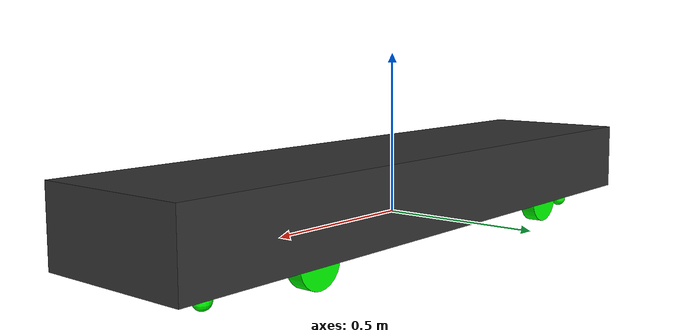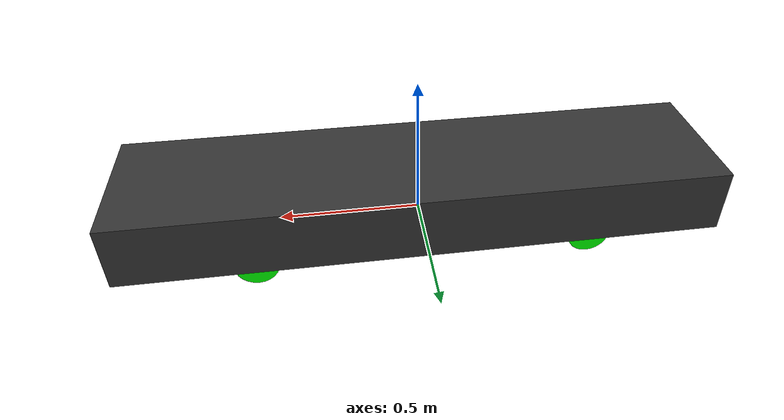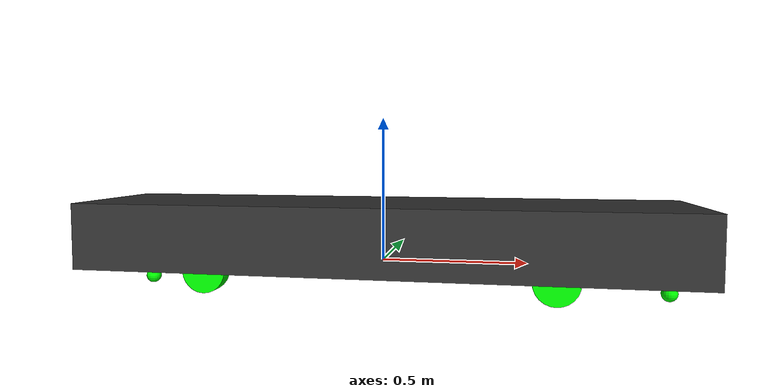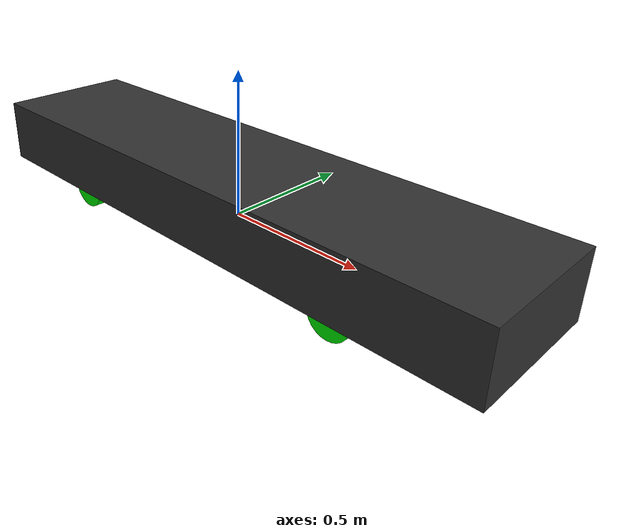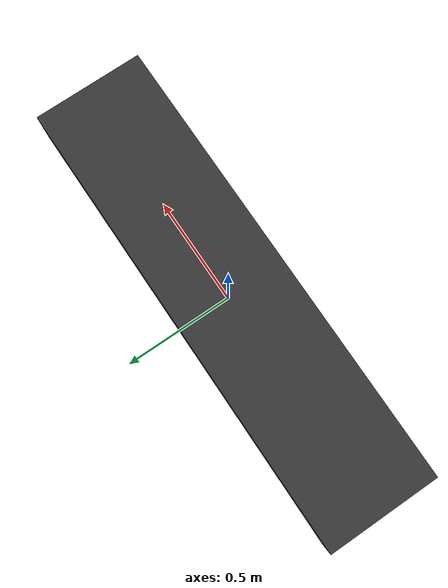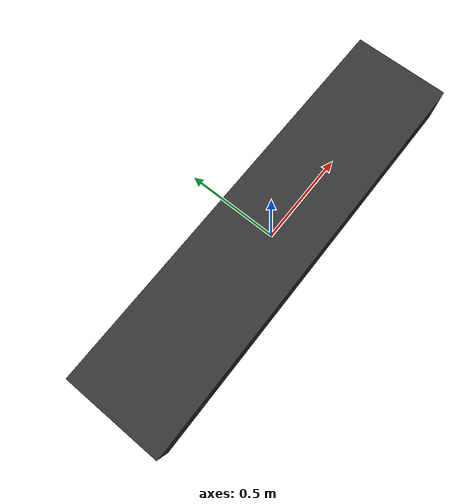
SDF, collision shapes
<sdf version='1.9'>
  <model name='Flexley_Tug'>
    <pose>0 0 0 0 0 0</pose>

    <link name="base_footprint"/>

    <!-- -Base Link -->
    <link name='base_link'>
      <inertial>
        <pose>0 0 0.09 0 0 0</pose>
        <mass>100</mass> <!-- mass of chassis -->
        <inertia>
            <ixx>2.0833</ixx>
            <ixy>0</ixy>
            <ixz>0</ixz>
            <iyy>36.75</iyy>
            <iyz>0</iyz>
            <izz>38.83</izz>
        </inertia>
      </inertial>

      <collision name='base_collision'>
        <pose>0 0 0.09 0 0 0</pose>
        <geometry>
          <box>
            <size>2.1 0.5 0.23</size> <!-- Box 2.1m length, 0.5m width, 0.23m height -->
          </box>
        </geometry>
      </collision>

      <visual name='base_link_visual'>
        <pose>0 0 0.09 0 0 0</pose>
        <material>
         <ambient>0.2 0.2 0.2 1</ambient>
         <diffuse>0.2 0.2 0.2 1</diffuse>
        </material>
        <geometry>
          <mesh>
            <scale>0.001 0.001 0.001</scale> <!-- scale 0.001 for units in meters -->
            <uri>../meshes/chassis.stl</uri>
          </mesh>
        </geometry>
      </visual>

      <sensor name="front_camera" type="camera">
       <pose>1.0 0 0.39 0 0 0</pose>
       <always_on>1</always_on> <!-- Keeps camera always on -->
       <update_rate>30</update_rate> <!-- 30 fps uprade rate -->
       <visualize>true</visualize>
       <topic>front_cam</topic> <!-- ign topic -->
       <camera>     <!-- Camera Properties -->
          <horizontal_fov>2.0944</horizontal_fov>
          <image>
            <width>640</width>
            <height>480</height>
            <format>R8G8B8</format>
          </image>
          <clip>
            <near>0.05</near>
            <far>50</far>
            </clip>
       </camera>
      </sensor>

      <sensor name="back_camera" type="camera">
       <pose>-1.0 0 0.39 0 0 3.14</pose>
       <always_on>1</always_on> <!-- Keeps camera always on -->
       <update_rate>30</update_rate> <!-- 30 fps uprade rate -->
       <visualize>true</visualize>
       <topic>back_cam</topic> <!-- ign topic -->
       <camera>     <!-- Camera Properties -->
          <horizontal_fov>2.0944</horizontal_fov>
          <image>
            <width>640</width>
            <height>480</height>
            <format>R8G8B8</format>
          </image>
          <clip>
            <near>0.05</near>
            <far>50</far>
            </clip>
       </camera>
      </sensor>

      <sensor name="front_right_camera" type="camera">
       <pose>1.0 -0.5 0.39 0 0 -1.57</pose>
       <always_on>1</always_on> <!-- Keeps camera always on -->
       <update_rate>30</update_rate> <!-- 30 fps uprade rate -->
       <visualize>true</visualize>
       <topic>front_right_cam</topic> <!-- ign topic -->
       <camera>     <!-- Camera Properties -->
          <horizontal_fov>2.0944</horizontal_fov>
          <image>
            <width>640</width>
            <height>480</height>
            <format>R8G8B8</format>
          </image>
          <clip>
            <near>0.05</near>
            <far>50</far>
            </clip>
       </camera>
      </sensor>

      <sensor name="back_right_camera" type="camera">
       <pose>-1.0 -0.5 0.39 0 0 -1.57</pose>
       <always_on>1</always_on> <!-- Keeps camera always on -->
       <update_rate>30</update_rate> <!-- 30 fps uprade rate -->
       <visualize>true</visualize>
       <topic>back_right_cam</topic> <!-- ign topic -->
       <camera>     <!-- Camera Properties -->
          <horizontal_fov>2.0944</horizontal_fov>
          <image>
            <width>640</width>
            <height>480</height>
            <format>R8G8B8</format>
          </image>
          <clip>
            <near>0.05</near>
            <far>50</far>
            </clip>
       </camera>
      </sensor>

      <sensor name="front_left_camera" type="camera">
       <pose>1.0 0.5 0.39 0 0 1.57</pose>
       <always_on>1</always_on> <!-- Keeps camera always on -->
       <update_rate>30</update_rate> <!-- 30 fps uprade rate -->
       <visualize>true</visualize>
       <topic>front_left_cam</topic> <!-- ign topic -->
       <camera>     <!-- Camera Properties -->
          <horizontal_fov>2.0944</horizontal_fov>
          <image>
            <width>640</width>
            <height>480</height>
            <format>R8G8B8</format>
          </image>
          <clip>
            <near>0.05</near>
            <far>50</far>
            </clip>
       </camera>
      </sensor>

      <sensor name="back_left_camera" type="camera">
       <pose>-1.0 0.5 0.39 0 0 1.57</pose>
       <always_on>1</always_on> <!-- Keeps camera always on -->
       <update_rate>30</update_rate> <!-- 30 fps uprade rate -->
       <visualize>true</visualize>
       <topic>back_left_cam</topic> <!-- ign topic -->
       <camera>     <!-- Camera Properties -->
          <horizontal_fov>2.0944</horizontal_fov>
          <image>
            <width>640</width>
            <height>480</height>
            <format>R8G8B8</format>
          </image>
          <clip>
            <near>0.05</near>
            <far>50</far>
            </clip>
       </camera>
      </sensor>
    </link>

    <joint name="base_joint" type="fixed">
      <parent>base_footprint</parent>
      <child>base_link</child>
      <pose>0 0 0.09 0 0 0</pose> <!-- Fixed joint at 0.09m z-axis attache to Base Footprint -->
    </joint>

    <!-- IMU Link -->
    <link name="imu_link">
      <sensor name='imu_sensor' type='imu'>
        <always_on>1</always_on> <!-- For continuous operation of sensor -->
        <update_rate>200</update_rate>  <!-- 200 Hz update rate -->
        <pose>0 0 0.06 0 -0 0</pose>
        <visualize>true</visualize>  <!-- Enables visualization in gazebo -->
        <topic>/imu_scan</topic>    <!-- ign topic for publishing the data -->
        <frameName>imu_link</frameName>
        <imu>
          <angular_velocity>   <!-- Parameters for measuring angular velocity -->
            <x>
              <noise type="gaussian">
              <mean>0.0</mean>
              <stddev>2e-4</stddev>
              </noise>
            </x>
            <y>
              <noise type="gaussian">
              <mean>0.0</mean>
              <stddev>2e-4</stddev>
              </noise>
            </y>
            <z>
              <noise type="gaussian">
              <mean>0.0</mean>
              <stddev>2e-4</stddev>
              </noise>
            </z>
          </angular_velocity>
          <linear_acceleration>  <!-- Parameters for measuring linear acceleration -->
            <x>
              <noise type="gaussian">
              <mean>0.0</mean>
              <stddev>1.7e-2</stddev>
              </noise>
            </x>
            <y>
              <noise type="gaussian">
              <mean>0.0</mean>
              <stddev>1.7e-2</stddev>
              </noise>
            </y>
            <z>
              <noise type="gaussian">
              <mean>0.0</mean>
              <stddev>1.7e-2</stddev>
              </noise>
            </z>
          </linear_acceleration>
        </imu>
      </sensor>
    </link>

    <joint name="imu_joint" type="fixed"> <!-- Fixed joint attached to base link -->
      <parent>base_link</parent>
      <child>imu_link</child>
      <pose>0 0 0.06 0 0 0</pose>
      <axis>
        <xyz>0 0 1</xyz>
      </axis>
    </joint>

    <!-- Front Lidar -->
    <link name="base_scan_front">
      <pose relative_to="base_footprint" >1.0 0 0.04 0 0 3.14</pose> <!-- x=1.0m, y=0, z=0.04m, r=0,p=0,y=3.14 rad -->
      <inertial>
        <inertia>
          <ixx>0.00098</ixx>
          <ixy>0</ixy>
          <ixz>0</ixz>
          <iyy>0.00098</iyy>
          <iyz>0</iyz>
          <izz>0.000146</izz>
        </inertia>
        <mass>1.17</mass> <!-- mass=1.17 kg -->
      </inertial>
      <collision name='lidar_sensor_front_collision'>
        <geometry>
          <cylinder>
            <length>0.05</length>
            <radius>0.05</radius>
          </cylinder>
        </geometry>
      </collision>
      <visual name='lidar_sensor_front_visual'>
        <material>
         <ambient>1 1 0 1</ambient>
         <diffuse>1 1 0 1</diffuse>
        </material>
        <geometry>
          <mesh>
            <scale>0.001 0.001 0.001</scale> <!-- scaled to 0.001 for units in meters -->
            <uri>../meshes/lidar_front.stl</uri>
          </mesh>
        </geometry>
      </visual>
      <sensor name='lidar_front' type='gpu_lidar'> <!-- sensor properties -->
         <pose> 0.01 0 0.22 0 0 3.14 </pose>  <!-- x=0.01m y=0m, z=0.22m, r=0, p=0, y=3.14 rad -->
         <topic>lidar_front</topic>  <!-- ign topic -->
         <frame_name>base_scan_front</frame_name>  <!-- ign frame -->
         <update_rate>5</update_rate>  <!-- 5 Hz suitable for low speed robots -->
         <always_on>1</always_on> <!-- Sensor active all the time -->
         <visualize>true</visualize> <!-- visualization in gazebo -->
         <ray>
              <scan>
                  <horizontal>
                       <samples>720</samples>  <!-- Number of horizontal laser rays emitted -->
                       <resolution>1</resolution>  <!-- Angular resolution multiplier -->
                       <min_angle>-1.396263</min_angle> <!-- minimum angle in horizontal direction-->
                       <max_angle>1.396263</max_angle>  <!-- maximum angle in horizontal direction-->
                  </horizontal>
                  <vertical>
                       <samples>1</samples>  <!-- Number of horizontal laser rays emitted -->
                       <resolution>0.01</resolution> <!-- vertical resolution -->
                       <min_angle>0</min_angle> <!-- zero spreed in vertical direction(2D LIdar)-->
                       <max_angle>0</max_angle> <!-- zero spreed in vertical direction(2D LIdar)-->
                  </vertical>
               </scan>
               <range>
                   <min>0.08</min>  <!-- minimum range (meters) -->
                   <max>10.0</max>  <!-- maximum range (meters) -->
                   <resolution>0.01</resolution>  <!-- lidar rays resolution -->
               </range>
         </ray>
      </sensor>
    </link>
    <joint name="lidar_front_joint" type="fixed">
      <pose>1.1 0 0 0 0 0</pose>
      <parent>base_footprint</parent>
      <child>base_scan_front</child>
      <axis>
        <xyz>0 0 1</xyz>
      </axis>
    </joint>

    <!-- Back Lidar -->
    <link name="base_scan_back">
     <pose relative_to="base_footprint" >-0.9 0 0.04 0 0 0</pose>
     <inertial>
        <inertia>
          <ixx>0.00098</ixx>
          <ixy>0</ixy>
          <ixz>0</ixz>
          <iyy>0.00098</iyy>
          <iyz>0</iyz>
          <izz>0.000146</izz>
        </inertia>
        <mass>1.17</mass>
      </inertial>

     <collision name='lidar_sensorback_collision'>
        <geometry>
          <cylinder>
            <length>0.05</length>
            <radius>0.05</radius>
          </cylinder>
        </geometry>
      </collision>

      <visual name='lidar_sensor_back_visual'>

        <material>
          <ambient>1 1 0 1</ambient>
          <diffuse>1 1 0 1</diffuse>
        </material>
        <geometry>
          <mesh>
            <scale>0.001 0.001 0.001</scale> <!-- scaled to 0.001 for units in meters -->
            <uri>../meshes/lidar_front.stl</uri>
          </mesh>
        </geometry>
      </visual>

      <sensor name='lidar_back' type='gpu_lidar'> <!-- sensor properties -->
         <pose>-0.05 0.0 0.22 0 0 3.14</pose>  <!-- x=-0.05m y=0m, z=0.22m, r=0, p=0, y=3.14 rad -->
         <topic>lidar_back</topic>  <!-- ign topic -->
         <frame_name>base_scan_back</frame_name>  <!-- ign frame -->
         <update_rate>5</update_rate>  <!-- 5 Hz suitable for low speed robots -->
         <always_on>1</always_on> <!-- Sensor active all the time -->
         <visualize>true</visualize> <!-- visualization in gazebo -->
         <ray>
              <scan>
                  <horizontal>
                       <samples>720</samples>  <!-- Number of horizontal laser rays emitted -->
                       <resolution>1</resolution>  <!-- Angular resolution multiplier -->
                       <min_angle>-1.396263</min_angle> <!-- minimum angle in horizontal direction-->
                       <max_angle>1.396263</max_angle>  <!-- maximum angle in horizontal direction-->
                  </horizontal>
                  <vertical>
                       <samples>1</samples>  <!-- Number of horizontal laser rays emitted -->
                       <resolution>0.01</resolution> <!-- vertical resolution -->
                       <min_angle>0</min_angle> <!-- zero spreed in vertical direction(2D LIdar)-->
                       <max_angle>0</max_angle> <!-- zero spreed in vertical direction(2D LIdar)-->
                  </vertical>
               </scan>
               <range>
                   <min>0.08</min>  <!-- minimum range (meters) -->
                   <max>10.0</max>  <!-- maximum range (meters) -->
                   <resolution>0.01</resolution>  <!-- lidar rays resolution -->
               </range>
         </ray>
      </sensor>

    </link>

    <joint name="lidar_back_joint" type="fixed">
      <pose relative_to='base_scan_back'/>
      <parent>base_footprint</parent>
      <child>base_scan_back</child>
      <axis>
        <xyz>0 0 1</xyz>
      </axis>
    </joint>

    <!-- Front Right Wheel -->
    <link name='front_right_wheel'>
      <inertial>   <!-- Inertial properties-->
        <pose>0.580 -0.200 -0.02 -1.5707 0 0</pose>
        <mass>0.765</mass> <!-- Mass of the wheel in kg -->
        <inertia> <!-- Inertia tensor components in kg·m² -->
            <ixx>0.0019</ixx>
            <ixy>0</ixy>
            <ixz>0</ixz>
            <iyy>0.0011</iyy>
            <iyz>0</iyz>
            <izz>0.0011</izz>
        </inertia>
      </inertial>

      <collision name='front_right_wheel_collision'>  <!-- Collision element  -->
        <pose>0.580 -0.200 -0.02 -1.5707 0 0</pose>
        <geometry>
          <cylinder>
            <radius>0.075</radius> <!-- Radius of the wheel in meters -->
            <length>0.05</length> <!-- Width (thickness) of the wheel -->
          </cylinder>
        </geometry>
        <surface>
           <friction>
             <ode>
              <mu>0.90</mu> <!-- Friction coefficient in longitudinal direction -->
              <mu2>0.25</mu2> <!-- Friction coefficient in lateral direction -->
              <fdir1>0 1 0</fdir1>
             </ode>
            </friction>
        </surface>

      </collision>

      <visual name='front_right_wheel_visual'> <!-- Visual element  -->
       <pose>0.580 -0.200 -0.02 0 0 0</pose>
       <material>
          <ambient>0 1 0 1</ambient> <!-- Ambient color: green -->
          <diffuse>0 1 0 1</diffuse> <!-- Diffuse color: green -->
       </material>
       <geometry>
          <mesh>
            <scale>0.001 0.001 0.001</scale> <!-- Scale down from mm to meters -->
            <uri>../meshes/wheel_front_right.stl</uri> <!-- Mesh file for visual appearance -->
          </mesh>
       </geometry>
      </visual>

    </link>

    <joint name="front_right_wheel_joint" type="revolute">
      <pose>0.580 -0.200 -0.02 0 -1.5707 0</pose>
      <parent>base_link</parent>
      <child>front_right_wheel</child>
      <dynamics>
        <damping>0</damping> <!-- Resistance to motion -->
      </dynamics>
      <effort>10000.0</effort> <!-- Max torque that can be applied -->
      <velocity>100.0</velocity> <!-- Max rotational velocity -->
      <axis>
        <xyz> 0 1 0</xyz> <!-- Rotation axis of the wheel (around y-axis) -->
        <limit> <!-- Very large limits simulate continuous rotation -->
          <lower>-1.7e+308</lower>
          <upper>1.7e+308</upper>
        </limit>
      </axis>
    </joint>

    <!-- Front Left Wheel -->
    <link name='front_left_wheel'>

      <inertial>  <!-- Inertial properties-->
        <pose>0.580 0.200 -0.02 -1.5707 0 0</pose>
        <mass>0.765</mass> <!-- Mass of the wheel in kg -->
        <inertia> <!-- Inertia tensor components in kg·m² -->
            <ixx>0.0019</ixx>
            <ixy>0</ixy>
            <ixz>0</ixz>
            <iyy>0.0011</iyy>
            <iyz>0</iyz>

            <izz>0.0011</izz>
        </inertia>
      </inertial>

      <collision name='front_left_wheel_collision'> <!-- Collision element  -->
        <pose>0.580 0.200 -0.02 -1.5707 0 0</pose>
        <geometry>
          <cylinder>
            <radius>0.075</radius> <!-- Radius of the wheel in meters -->
            <length>0.05</length>  <!-- Width (thickness) of the wheel -->
          </cylinder>
        </geometry>
        <surface>
           <friction>
             <ode>
              <mu>0.90</mu> <!-- Friction coefficient in longitudinal direction -->
              <mu2>0.25</mu2> <!-- Friction coefficient in lateral direction -->
              <fdir1>0 1 0</fdir1>
             </ode>
            </friction>
        </surface>

      </collision>
      <visual name='front_left_wheel_visual'> <!-- Visual element  -->
        <pose>0.580 0.200 -0.02 0 0 0</pose>
        <material>
         <ambient>0 1 0 1</ambient> <!-- Ambient color: green -->
         <diffuse>0 1 0 1</diffuse> <!-- Diffuse color: green -->
        </material>
        <geometry>
          <mesh>
            <scale>0.001 0.001 0.001</scale> <!-- Scale down from mm to meters -->
            <uri>../meshes/wheel_front_left.stl</uri> <!-- Mesh file for visual appearance -->
          </mesh>
        </geometry>
      </visual>

    </link>

    <joint name="front_left_wheel_joint" type="revolute">
      <pose>0.580 0.200 -0.02 0 -1.5707 0</pose>
      <parent>base_link</parent>
      <child>front_left_wheel</child>
      <dynamics>
        <damping>0</damping> <!-- Resistance to motion -->
      </dynamics>
      <effort>10000.0</effort> <!-- Max torque that can be applied -->
      <velocity>100.0</velocity> <!-- Max rotational velocity -->
      <axis>
        <xyz> 0 1 0</xyz> <!-- Rotation axis of the wheel (around y-axis) -->
        <limit>  <!-- Very large limits simulate continuous rotation -->
          <lower>-1.7e+308</lower>
          <upper>1.7e+308</upper>
        </limit>
      </axis>
    </joint>

    <!-- Back Right Wheel -->
    <link name='back_right_wheel'>
     <inertial> <!-- Inertial properties-->
        <pose>-0.580 -0.200 -0.02 -1.5707 0 0</pose>
        <mass>0.765</mass> <!-- Mass of the wheel in kg -->
        <inertia> <!-- Inertia tensor components in kg·m² -->
            <ixx>0.0019</ixx>
            <ixy>0</ixy>
            <ixz>0</ixz>
            <iyy>0.0011</iyy>
            <iyz>0</iyz>
            <izz>0.0011</izz>
        </inertia>
      </inertial>

      <collision name='back_right_wheel_collision'> <!-- Collision element  -->
        <pose>-0.580 -0.200 -0.02 -1.5707 0 0</pose>
        <geometry>
          <cylinder>
            <radius>0.075</radius> <!-- Radius of the wheel in meters -->
            <length>0.05</length> <!-- Width (thickness) of the wheel -->
          </cylinder>
        </geometry>
        <surface>
           <friction>
             <ode>
              <mu>0.90</mu> <!-- Friction coefficient in longitudinal direction -->
              <mu2>0.25</mu2> <!-- Friction coefficient in lateral direction -->
              <fdir1>0 1 0</fdir1>
             </ode>
            </friction>
        </surface>

      </collision>

      <visual name='back_right_wheel_visual'> <!-- Visual element  -->
        <pose>-0.580 -0.200 -0.02 0 0 0</pose>
        <material>
         <ambient>0 1 0 1</ambient> <!-- Ambient color: green -->
         <diffuse>0 1 0 1</diffuse> <!-- Diffuse color: green -->
        </material>
        <geometry>
          <mesh>
            <scale>0.001 0.001 0.001</scale> <!-- Scale down from mm to meters -->
            <uri>../meshes/wheel_front_right.stl</uri> <!-- Mesh file for visual appearance -->
          </mesh>
        </geometry>
      </visual>

    </link>

    <joint name="back_right_wheel_joint" type="revolute">
      <pose>-0.580 -0.200 -0.02 0 -1.5707 0</pose>
      <parent>base_link</parent>
      <child>back_right_wheel</child>
      <dynamics>
        <damping>0</damping> <!-- Resistance to motion -->
      </dynamics>
      <effort>10000.0</effort> <!-- Max torque that can be applied -->
      <velocity>100.0</velocity> <!-- Max rotational velocity -->
      <axis>
        <xyz> 0 1 0</xyz> <!-- Rotation axis of the wheel (around y-axis) -->
        <limit>  <!-- Very large limits simulate continuous rotation -->
          <lower>-1.7e+308</lower>
          <upper>1.7e+308</upper>
        </limit>
      </axis>
    </joint>

    <!-- Back Left Wheel -->
    <link name='back_left_wheel'>
      <inertial> <!-- Inertial properties-->
        <pose>-0.580 0.200 -0.02 -1.5707 0 0</pose>
        <mass>0.765</mass> <!-- Mass of the wheel in kg -->
        <inertia> <!-- Inertia tensor components in kg·m² -->
            <ixx>0.0019</ixx>
            <ixy>0</ixy>
            <ixz>0</ixz>
            <iyy>0.0011</iyy>
            <iyz>0</iyz>

            <izz>0.0011</izz>
        </inertia>
      </inertial>

      <collision name='back_left_wheel_collision'> <!-- Collision element  -->
        <pose>-0.580 0.200 -0.02 -1.5707 0 0</pose>
        <geometry>
          <cylinder>
            <radius>0.075</radius> <!-- Radius of the wheel in meters -->
            <length>0.05</length> <!-- Width (thickness) of the wheel -->
          </cylinder>
        </geometry>
        <surface>
           <friction>
             <ode>
              <mu>0.90</mu> <!-- Friction coefficient in longitudinal direction -->
              <mu2>0.25</mu2> <!-- Friction coefficient in lateral direction -->
              <fdir1>0 1 0</fdir1>
             </ode>
            </friction>
        </surface>

      </collision>

      <visual name='back_left_wheel_visual'> <!-- Visual element  -->
        <pose>-0.580 0.200 -0.02 0 0 0</pose>
        <material>
         <ambient>0 1 0 1</ambient> <!-- Ambient color: green -->
         <diffuse>0 1 0 1</diffuse> <!-- Diffuse color: green -->
        </material>
        <geometry>
          <mesh>
            <scale>0.001 0.001 0.001</scale> <!-- Scale down from mm to meters -->
            <uri>../meshes/wheel_front_right.stl</uri> <!-- Mesh file for visual appearance -->
          </mesh>
        </geometry>
      </visual>
    </link>

    <joint name="back_left_wheel_joint" type="revolute">
      <pose>-0.580 0.200 -0.02 0 -1.5707 0</pose>
      <parent>base_link</parent>
      <child>back_left_wheel</child>
      <dynamics>
        <damping>0</damping> <!-- Resistance to motion -->
      </dynamics>
      <effort>10000.0</effort> <!-- Max torque that can be applied -->
      <velocity>100.0</velocity> <!-- Max rotational velocity -->
      <axis>
        <xyz> 0 1 0</xyz> <!-- Rotation axis of the wheel (around y-axis) -->
        <limit>  <!-- Very large limits simulate continuous rotation -->
          <lower>-1.7e+308</lower>
          <upper>1.7e+308</upper>
        </limit>
      </axis>
    </joint>

   <!-- Front Right Castor Wheel -->
   <link name='castor_front_right'>
     <inertial> <!-- Inertial properties-->
        <pose>0.920 -0.170 -0.05 0 0 0</pose>
        <mass>0.103</mass> <!-- Mass of the wheel in kg -->
        <inertia> <!-- Inertia tensor components in kg·m² -->
            <ixx>0.016</ixx>
            <ixy>0</ixy>
            <ixz>0</ixz>
            <iyy>0.016</iyy>
            <iyz>0</iyz>
            <izz>0.016</izz>
        </inertia>
     </inertial>
     <visual name='visual_castor_front_right'> <!-- Visual element  -->
      <pose>0.920 -0.170 -0.05 0 0 0</pose>
      <material>
         <ambient>0 1 0 1</ambient> <!-- Ambient color: green -->
         <diffuse>0 1 0 1</diffuse> <!-- Diffuse color: green -->
      </material>
      <geometry>
        <mesh>
         <scale>0.001 0.001 0.001</scale> <!-- Scale down from mm to meters -->
         <uri>../meshes/castor_front_right.stl</uri> <!-- Mesh file for visual appearance -->
        </mesh>
      </geometry>
     </visual>
     <collision name='collision_castor_front_right'> <!-- Collision element  -->
        <pose>0.920 -0.170 -0.05 0 0 0</pose>
        <geometry>
          <sphere>
             <radius>0.025</radius> <!-- Radius in meters -->
          </sphere>
        </geometry>
     </collision>
   </link>
   <joint name='caster__front_right_joint' type='ball'>
      <pose>0.920 -0.170 -0.05 0 0 0</pose>
      <parent>base_link</parent>
      <child>castor_front_right</child>
   </joint>
   <!-- Front Left Castor Wheel -->
    <link name='castor_front_left'>
     <inertial> <!-- Inertial properties-->
        <pose>0.920 0.170 -0.05 0 0 0</pose>
        <mass>0.103</mass> <!-- Mass of the wheel in kg -->
        <inertia> <!-- Inertia tensor components in kg·m² -->
            <ixx>0.016</ixx>
            <ixy>0</ixy>
            <ixz>0</ixz>
            <iyy>0.016</iyy>
            <iyz>0</iyz>
            <izz>0.016</izz>
        </inertia>
     </inertial>
     <visual name='visual_castor_front_left'> <!-- Visual element  -->
      <pose>0.920 0.170 -0.05 0 0 0</pose>
      <material>
         <ambient>0 1 0 1</ambient> <!-- Ambient color: green -->
         <diffuse>0 1 0 1</diffuse>  <!-- Diffuse color: green -->
      </material>
      <geometry>
        <mesh>
         <scale>0.001 0.001 0.001</scale> <!-- Scale down from mm to meters -->
         <uri>../meshes/castor_front_right.stl</uri> <!-- Mesh file for visual appearance -->
        </mesh>
      </geometry>
     </visual>
     <collision name='collision_castor_front_left'> <!-- Collision element  -->
        <pose>0.920 0.170 -0.05 0 0 0</pose>
        <geometry>
          <sphere>
             <radius>0.025</radius> <!-- Radius in meters -->
          </sphere>
        </geometry>
     </collision>
    </link>
    <joint name='caster_front_left_joint' type='ball'>
      <pose>0.920 0.170 -0.05 0 0 0</pose>
      <parent>base_link</parent>
      <child>castor_front_left</child>
    </joint>

    <!-- Back Right Castor Wheel -->
   <link name='castor_back_right'>
     <inertial>  <!-- Inertial properties-->
        <pose>-0.790 -0.170 -0.05 0 0 0</pose>
        <mass>0.103</mass> <!-- Mass of the wheel in kg -->
        <inertia>  <!-- Inertia tensor components in kg·m² -->
            <ixx>0.016</ixx>
            <ixy>0</ixy>
            <ixz>0</ixz>
            <iyy>0.016</iyy>
            <iyz>0</iyz>
            <izz>0.016</izz>
        </inertia>
     </inertial>
     <visual name='visual_castor_back_right'> <!-- Visual element  -->
      <pose>-0.790 -0.170 -0.05 0 0 0</pose>
      <material>
         <ambient>0 1 0 1</ambient> <!-- Ambient color: green -->
         <diffuse>0 1 0 1</diffuse> <!-- Diffuse color: green -->
      </material>
      <geometry>
        <mesh>
         <scale>0.001 0.001 0.001</scale> <!-- Scale down from mm to meters -->
         <uri>../meshes/castor_front_right.stl</uri> <!-- Mesh file for visual appearance -->
        </mesh>
      </geometry>
     </visual>
     <collision name='collision_castor_back_right'> <!-- Collision element  -->
        <pose>-0.790 -0.170 -0.05 0 0 0</pose>
        <geometry>
          <sphere>
             <radius>0.025</radius> <!-- Radius in meters -->
          </sphere>
        </geometry>
     </collision>
   </link>
   <joint name='caster_back_right_joint' type='ball'>
      <pose>-0.790 -0.170 -0.05 0 0 0</pose>
      <parent>base_link</parent>
      <child>castor_back_right</child>
   </joint>
   <!-- Back Left Castor Wheel -->
    <link name='castor_back_left'>
     <inertial> <!-- Inertial properties-->
        <pose>-0.790 0.170 -0.05 0 0 0</pose>
        <mass>0.103</mass> <!-- Mass of the wheel in kg -->
        <inertia>  <!-- Inertia tensor components in kg·m² -->
            <ixx>0.016</ixx>
            <ixy>0</ixy>
            <ixz>0</ixz>
            <iyy>0.016</iyy>
            <iyz>0</iyz>
            <izz>0.016</izz>
        </inertia>
     </inertial>
     <visual name='visual_castor_back_left'> <!-- Visual element  -->
      <pose>-0.790 0.170 -0.05 0 0 0</pose>
      <material>
         <ambient>0 1 0 1</ambient> <!-- Ambient color: green -->
         <diffuse>0 1 0 1</diffuse> <!-- Diffuse color: green -->
      </material>
      <geometry>
        <mesh>
         <scale>0.001 0.001 0.001</scale>  <!-- Scale down from mm to meters -->
         <uri>../meshes/castor_front_right.stl</uri>  <!-- Mesh file for visual appearance -->
        </mesh>
      </geometry>
     </visual>
     <collision name='collision_castor_back_left'> <!-- Collision element  -->
        <pose>-0.790 0.170 -0.05 0 0 0</pose>
        <geometry>
          <sphere>
             <radius>0.025</radius>  <!-- Radius in meters -->
          </sphere>
        </geometry>
     </collision>
    </link>
    <joint name='caster_back_left_joint' type='ball'>
      <pose>-0.790 0.170 -0.05 0 0 0</pose>
      <parent>base_link</parent>
      <child>castor_back_left</child>
    </joint>

    <!-- Gazebo Plugins -->
    <plugin name="ignition::gazebo::systems::DiffDrive"
        filename="libignition-gazebo-diff-drive-system.so">
      <left_joint>front_left_wheel_joint</left_joint>
      <left_joint>back_left_wheel_joint</left_joint>
      <right_joint>front_right_wheel_joint</right_joint>
      <right_joint>back_right_wheel_joint</right_joint>
      <wheel_separation>0.400</wheel_separation> <!-- Distance between left and right wheels (meters) -->
      <wheel_radius>0.075</wheel_radius> <!-- Radius of the wheels (meters) -->
      <topic>/cmd_vel</topic> <!-- Topic to receive velocity commands  -->
      <odom_topic>/odom</odom_topic> <!-- Topic to publish odometry  -->
      <odometry_frame>odom</odometry_frame>
      <publish_tf>true</publish_tf>
      <broadcast_TF>1</broadcast_TF>
      <publish_odom>true</publish_odom>
      <base_frame>base_link</base_frame> <!-- Base frame used in the odometry message -->
      <update_rate>50</update_rate>
    </plugin>

    <plugin name="ignition::gazebo::systems::JointStatePublisher" filename="libignition-gazebo-joint-state-publisher-system.so">
     <update_rate>30</update_rate> <!-- Update rate in Hz for publishing joint states -->
     <joint_name>front_left_wheel_joint</joint_name>
     <joint_name>front_right_wheel_joint</joint_name>
     <joint_name>back_left_wheel_joint</joint_name>
     <joint_name>back_right_wheel_joint</joint_name>
     <topic>/joint_states</topic> <!-- Topic for publishing joint states (sensor_msgs/JointState) -->
    </plugin>

    <plugin name="ignition::gazebo::systems::DetachableJoint" filename="libignition-gazebo-detachable-joint-system.so" >

      <parent_link>base_link</parent_link>
      <child_model>trolley</child_model>
      <child_link>base</child_link>
      <output_topic>/detachable_joint_state</output_topic>
      <attach_topic>/attach</attach_topic>
      <detach_topic>/detach</detach_topic>

    </plugin>

 </model>
</sdf>
